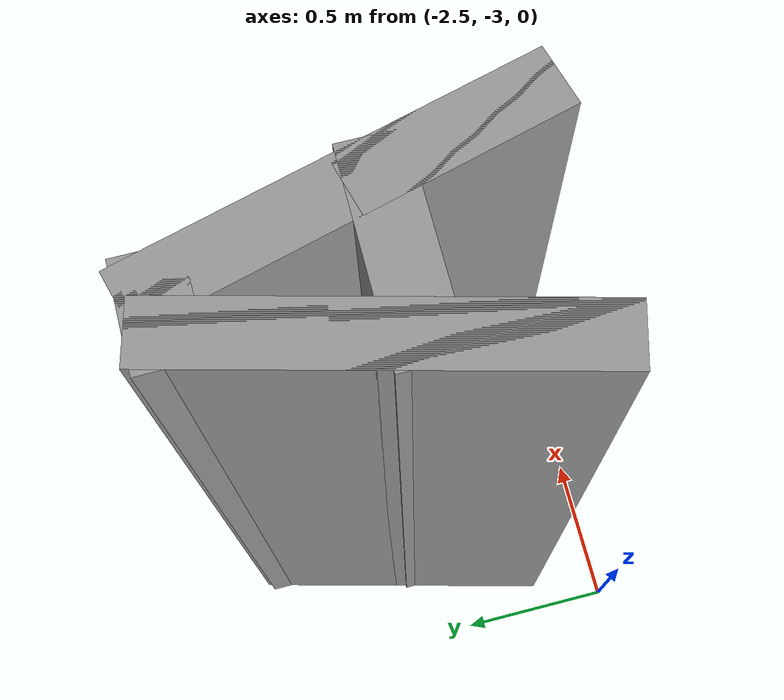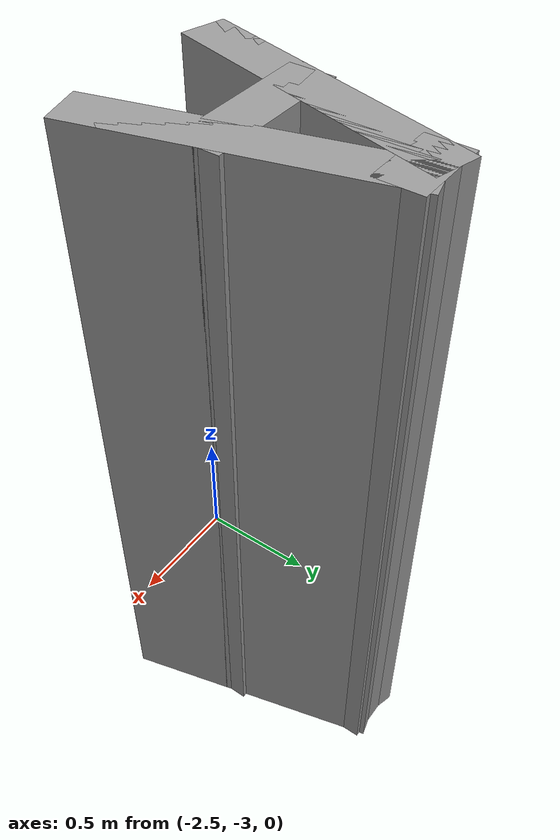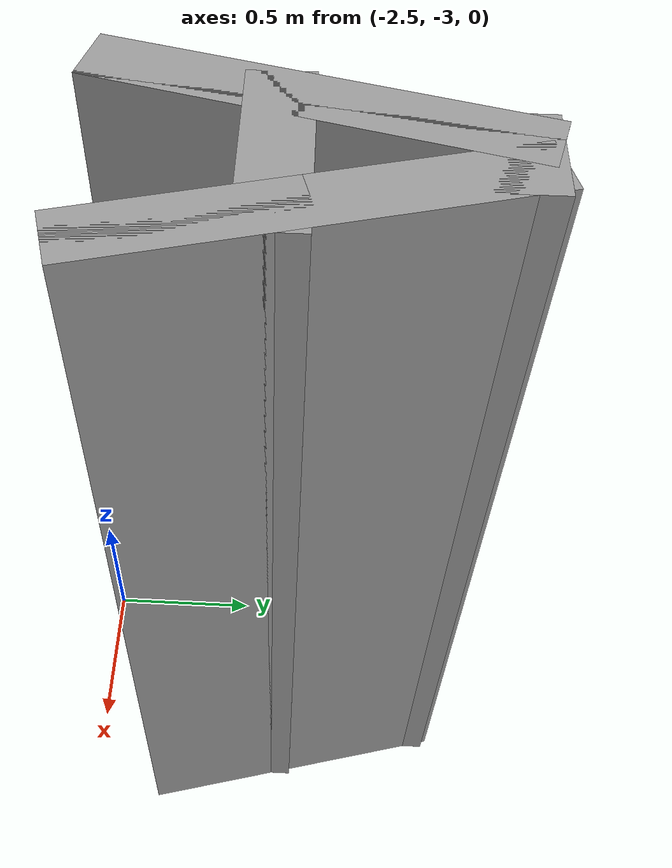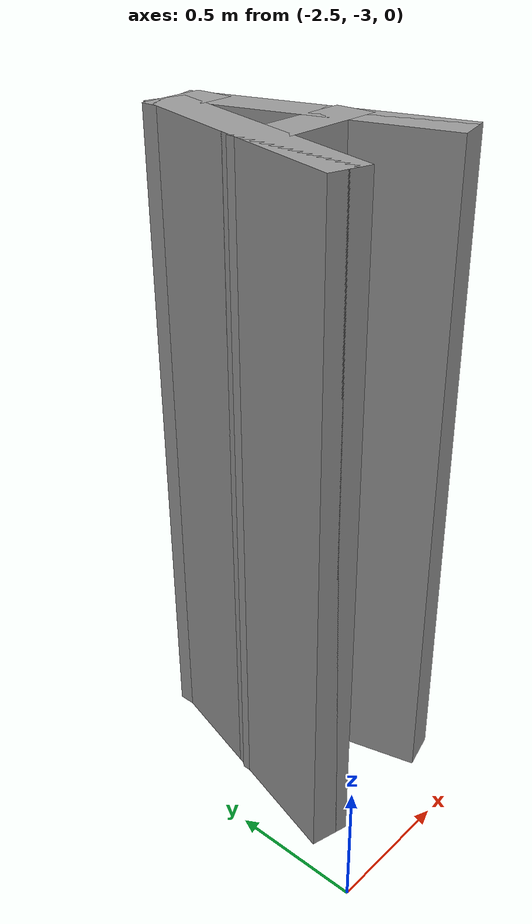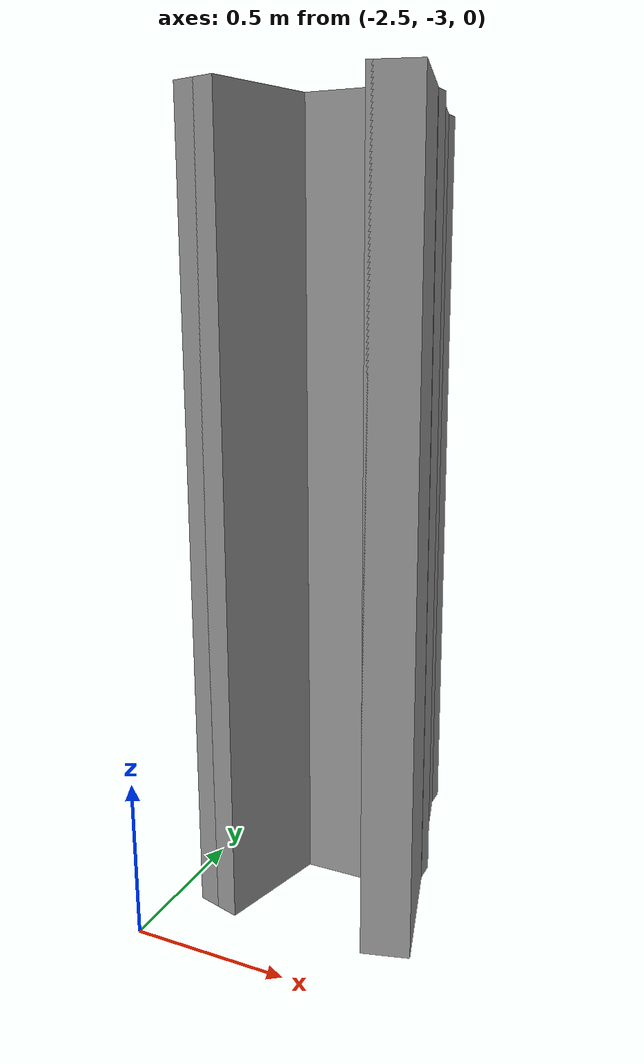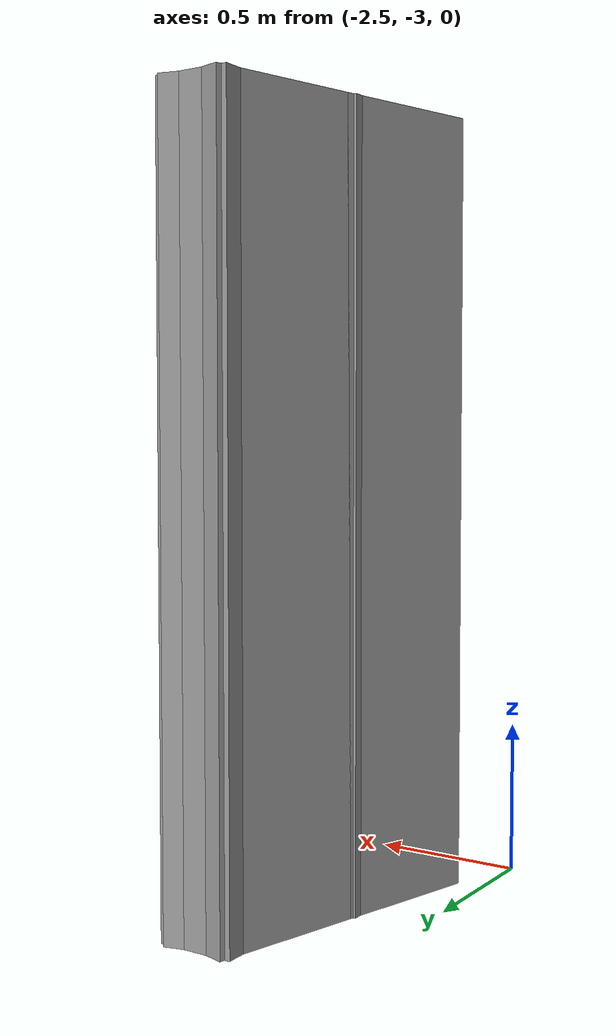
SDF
<?xml version='1.0'?>
<sdf version='1.6'>
  <model name='A'>
    <pose frame=''>-2.05316 -2.3061 0 0 -0 0</pose>
    <link name='Wall_45'>
      <collision name='Wall_45_Collision'>
        <geometry>
          <box>
            <size>1 0.15 2.5</size>
          </box>
        </geometry>
        <pose frame=''>0 0 1.25 0 -0 0</pose>
      </collision>
      <visual name='Wall_45_Visual'>
        <pose frame=''>0 0 1.25 0 -0 0</pose>
        <geometry>
          <box>
            <size>1 0.15 2.5</size>
          </box>
        </geometry>
        <material>
          <script>
            <uri>file://media/materials/scripts/gazebo.material</uri>
            <name>Gazebo/Grey</name>
          </script>
          <ambient>1 1 1 1</ambient>
        </material>
        <meta>
          <layer>0</layer>
        </meta>
      </visual>
      <pose frame=''>-0.159998 0 0 0 -0 -1.8326</pose>
    </link>
    <link name='Wall_46'>
      <collision name='Wall_46_Collision'>
        <geometry>
          <box>
            <size>1 0.15 2.5</size>
          </box>
        </geometry>
        <pose frame=''>0 0 1.25 0 -0 0</pose>
      </collision>
      <visual name='Wall_46_Visual'>
        <pose frame=''>0 0 1.25 0 -0 0</pose>
        <geometry>
          <box>
            <size>1 0.15 2.5</size>
          </box>
        </geometry>
        <material>
          <script>
            <uri>file://media/materials/scripts/gazebo.material</uri>
            <name>Gazebo/Grey</name>
          </script>
          <ambient>1 1 1 1</ambient>
        </material>
        <meta>
          <layer>0</layer>
        </meta>
      </visual>
      <pose frame=''>-0.159998 0 0 0 -0 1.309</pose>
    </link>
    <link name='Wall_47'>
      <collision name='Wall_47_Collision'>
        <geometry>
          <box>
            <size>0.25 0.15 2.5</size>
          </box>
        </geometry>
        <pose frame=''>0 0 1.25 0 -0 0</pose>
      </collision>
      <visual name='Wall_47_Visual'>
        <pose frame=''>0 0 1.25 0 -0 0</pose>
        <geometry>
          <box>
            <size>0.25 0.15 2.5</size>
          </box>
        </geometry>
        <material>
          <script>
            <uri>file://media/materials/scripts/gazebo.material</uri>
            <name>Gazebo/Grey</name>
          </script>
          <ambient>1 1 1 1</ambient>
        </material>
        <meta>
          <layer>0</layer>
        </meta>
      </visual>
      <pose frame=''>0 0.410519 0 0 -0 0</pose>
    </link>
    <link name='Wall_48'>
      <collision name='Wall_48_Collision'>
        <geometry>
          <box>
            <size>1 0.15 2.5</size>
          </box>
        </geometry>
        <pose frame=''>0 0 1.25 0 -0 0</pose>
      </collision>
      <visual name='Wall_48_Visual'>
        <pose frame=''>0 0 1.25 0 -0 0</pose>
        <geometry>
          <box>
            <size>1 0.15 2.5</size>
          </box>
        </geometry>
        <material>
          <script>
            <uri>file://media/materials/scripts/gazebo.material</uri>
            <name>Gazebo/Grey</name>
          </script>
          <ambient>1 1 1 1</ambient>
        </material>
        <meta>
          <layer>0</layer>
        </meta>
      </visual>
      <pose frame=''>0.159998 0 0 0 -0 -1.309</pose>
    </link>
    <link name='Wall_49'>
      <collision name='Wall_49_Collision'>
        <geometry>
          <box>
            <size>0.5 0.15 2.5</size>
          </box>
        </geometry>
        <pose frame=''>0 0 1.25 0 -0 0</pose>
      </collision>
      <visual name='Wall_49_Visual'>
        <pose frame=''>0 0 1.25 0 -0 0</pose>
        <geometry>
          <box>
            <size>0.5 0.15 2.5</size>
          </box>
        </geometry>
        <material>
          <script>
            <uri>file://media/materials/scripts/gazebo.material</uri>
            <name>Gazebo/Grey</name>
          </script>
          <ambient>1 1 1 1</ambient>
        </material>
        <meta>
          <layer>0</layer>
        </meta>
      </visual>
      <pose frame=''>0.224703 -0.241481 0 0 -0 1.8326</pose>
    </link>
    <link name='Wall_50'>
      <collision name='Wall_50_Collision'>
        <geometry>
          <box>
            <size>0.5 0.15 2.5</size>
          </box>
        </geometry>
        <pose frame=''>0 0 1.25 0 -0 0</pose>
      </collision>
      <visual name='Wall_50_Visual'>
        <pose frame=''>0 0 1.25 0 -0 0</pose>
        <geometry>
          <box>
            <size>0.5 0.15 2.5</size>
          </box>
        </geometry>
        <material>
          <script>
            <uri>file://media/materials/scripts/gazebo.material</uri>
            <name>Gazebo/Grey</name>
          </script>
          <ambient>1 1 1 1</ambient>
        </material>
        <meta>
          <layer>0</layer>
        </meta>
      </visual>
      <pose frame=''>0.00441 -0.072444 0 0 -0 3.14159</pose>
    </link>
    <static>1</static>
  </model>
</sdf>
